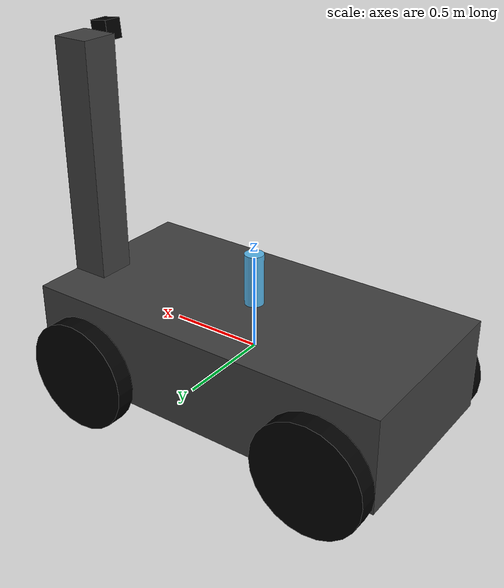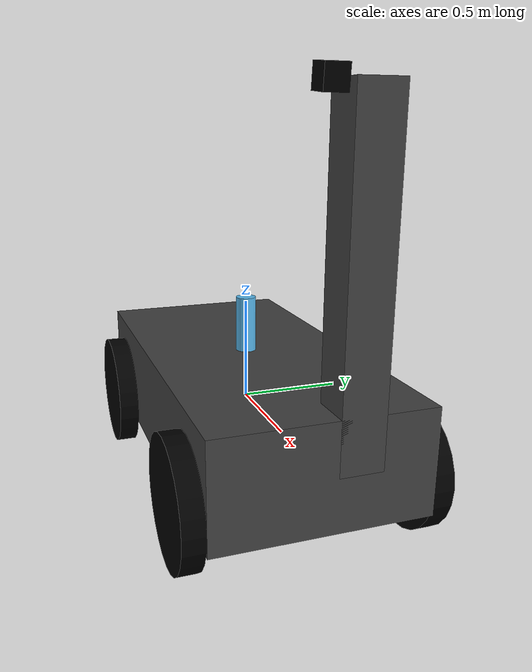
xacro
<?xml version="1.0"?>
<robot name="gmu_ackermann" xmlns:xacro="http://www.ros.org/wiki/xacro">

  <!-- Size (same as the original vehicle.xacro) -->
  <xacro:property name="body_length" value="2.0"/>
  <xacro:property name="body_width" value="1.0"/>
  <xacro:property name="body_height" value="0.5"/>
  <xacro:property name="body_density" value="100.0"/>
  <xacro:property name="wheel_radius" value="0.3"/>
  <xacro:property name="wheel_width" value="0.1"/>
  <xacro:property name="wheel_density" value="500.0"/>
  <xacro:property name="max_steering_angle" value="0.6108"/>
  <xacro:property name="max_steering_angular_velocity" value="1.570796"/>
  <xacro:property name="max_steering_effort" value="50.0"/>
  <xacro:property name="max_velocity" value="2.0"/>
  <xacro:property name="max_effort" value="50.0"/>
  <xacro:property name="camera_box_size" value="0.1"/>
  <xacro:property name="camera_stick_size" value="0.2"/>
  <xacro:property name="camera_height" value="1.5"/>
  <xacro:property name="camera_pitch" value="0.1"/>

  <!-- Derived -->
  <xacro:property name="body_mass" value="${body_density * body_length * body_height * body_width}"/>
  <xacro:property name="body_ix" value="${1.0/12.0 * body_mass * (body_height*body_height + body_width*body_width)}"/>
  <xacro:property name="body_iy" value="${1.0/12.0 * body_mass * (body_length*body_length + body_height*body_height)}"/>
  <xacro:property name="body_iz" value="${1.0/12.0 * body_mass * (body_length*body_length + body_width*body_width)}"/>
  <xacro:property name="wheel_separation" value="${body_width + wheel_width}"/>
  <xacro:property name="wheel_offset" value="${body_length/2 - wheel_radius}"/>
  <xacro:property name="wheel_mass" value="${wheel_density * pi * wheel_radius * wheel_radius * wheel_width}"/>
  <xacro:property name="wheel_ixy" value="${1.0/12.0 * wheel_mass * (3*wheel_radius*wheel_radius + wheel_width*wheel_width)}"/>
  <xacro:property name="wheel_iz" value="${0.5 * wheel_mass * wheel_radius * wheel_radius}"/>
  <xacro:property name="max_wheel_w" value="${max_velocity / wheel_radius}"/>

  <!-- Macros -->
  <xacro:macro name="wheel_link" params="name">
    <link name="${name}_wheel_link">
      <visual>
        <origin xyz="0 0 0" rpy="1.570795 0 0"/>
        <geometry><cylinder radius="${wheel_radius}" length="${wheel_width}"/></geometry>
        <material name="wheel_material"><color rgba="0 0 0 1"/></material>
      </visual>
      <collision>
        <origin xyz="0 0 0" rpy="1.570795 0 0"/>
        <geometry><cylinder radius="${wheel_radius}" length="${wheel_width}"/></geometry>
      </collision>
      <inertial>
        <mass value="${wheel_mass}"/>
        <origin xyz="0 0 0" rpy="1.570795 0 0"/>
        <inertia ixx="${wheel_ixy}" ixy="0" ixz="0" iyy="${wheel_ixy}" iyz="0" izz="${wheel_iz}"/>
      </inertial>
    </link>
  </xacro:macro>

  <xacro:macro name="steering_link" params="name">
    <link name="${name}_steering_link">
      <visual>
        <geometry><cylinder radius="0.02" length="0.02"/></geometry>
      </visual>
      <inertial>
        <mass value="0.5"/>
        <inertia ixx="0.001" ixy="0" ixz="0" iyy="0.001" iyz="0" izz="0.001"/>
      </inertial>
    </link>
  </xacro:macro>

  <xacro:macro name="effort_transmission" params="joint">
    <transmission name="${joint}_trans">
      <type>transmission_interface/SimpleTransmission</type>
      <joint name="${joint}">
        <hardwareInterface>hardware_interface/EffortJointInterface</hardwareInterface>
      </joint>
      <actuator name="${joint}_motor">
        <hardwareInterface>hardware_interface/EffortJointInterface</hardwareInterface>
        <mechanicalReduction>1</mechanicalReduction>
      </actuator>
    </transmission>
  </xacro:macro>

  <!-- Links -->
  <link name="body_link">
    <visual>
      <geometry><box size="${body_length} ${body_width} ${body_height}"/></geometry>
      <material name="body_material"><color rgba="0.25 0.25 0.25 1"/></material>
    </visual>
    <collision>
      <geometry><box size="${body_length} ${body_width} ${body_height}"/></geometry>
    </collision>
    <inertial>
      <mass value="${body_mass}"/>
      <inertia ixx="${body_ix}" ixy="0" ixz="0" iyy="${body_iy}" iyz="0" izz="${body_iz}"/>
    </inertial>
  </link>

  <xacro:wheel_link name="front_left"/>
  <xacro:wheel_link name="front_right"/>
  <xacro:wheel_link name="rear_left"/>
  <xacro:wheel_link name="rear_right"/>
  <xacro:steering_link name="front_left"/>
  <xacro:steering_link name="front_right"/>

  <link name="camera_stick_link">
    <visual>
      <geometry><box size="${camera_stick_size} ${camera_stick_size} ${camera_height}"/></geometry>
      <material name="camera_stick_material"><color rgba="0.25 0.25 0.25 1"/></material>
    </visual>
    <inertial>
      <mass value="1e-5"/>
      <inertia ixx="1e-6" ixy="0" ixz="0" iyy="1e-6" iyz="0" izz="1e-6"/>
    </inertial>
  </link>

  <link name="camera_link">
    <visual>
      <geometry><box size="${camera_box_size} ${camera_box_size} ${camera_box_size}"/></geometry>
      <material name="camera_material"><color rgba="0 0 0 1"/></material>
    </visual>
    <inertial>
      <mass value="1e-5"/>
      <inertia ixx="1e-6" ixy="0" ixz="0" iyy="1e-6" iyz="0" izz="1e-6"/>
    </inertial>
  </link>

  <link name="laser_link">
    <visual>
      <geometry><cylinder radius= "0.05" length= "0.5"/></geometry>
    </visual>
    <inertial>
      <mass value="1e-5"/>
      <inertia ixx="1e-6" ixy="0" ixz="0" iyy="1e-6" iyz="0" izz="1e-6"/>
    </inertial>
  </link>

  <!-- Joints -->
  <joint name="front_left_steering_joint" type="revolute">
    <origin xyz="${wheel_offset} ${wheel_separation/2} -${wheel_radius/2}" rpy="0 0 0"/>
    <parent link="body_link"/>
    <child link="front_left_steering_link"/>
    <axis xyz="0 0 1"/>
    <limit effort="${max_steering_effort}" lower="${-max_steering_angle}" upper="${max_steering_angle}" velocity="${max_steering_angular_velocity}"/>
    <dynamics damping="0.1" friction="0.1"/>
  </joint>

  <joint name="front_left_wheel_joint" type="continuous">
    <parent link="front_left_steering_link"/>
    <child link="front_left_wheel_link"/>
    <axis xyz="0 1 0"/>
    <dynamics damping="0.1" friction="0.1"/>
  </joint>

  <joint name="front_right_steering_joint" type="revolute">
    <origin xyz="${wheel_offset} ${-wheel_separation/2} -${wheel_radius/2}" rpy="0 0 0"/>
    <parent link="body_link"/>
    <child link="front_right_steering_link"/>
    <axis xyz="0 0 1"/>
    <limit effort="${max_steering_effort}" lower="${-max_steering_angle}" upper="${max_steering_angle}" velocity="${max_steering_angular_velocity}"/>
    <dynamics damping="0.1" friction="0.1"/>
  </joint>

  <joint name="front_right_wheel_joint" type="continuous">
    <parent link="front_right_steering_link"/>
    <child link="front_right_wheel_link"/>
    <axis xyz="0 1 0"/>
    <dynamics damping="0.1" friction="0.1"/>
  </joint>

  <joint name="rear_left_wheel_joint" type="continuous">
    <origin xyz="-${wheel_offset} ${wheel_separation/2} -${wheel_radius/2}" rpy="0 0 0"/>
    <parent link="body_link"/>
    <child link="rear_left_wheel_link"/>
    <axis xyz="0 1 0"/>
    <limit effort="${max_effort}" velocity="${max_wheel_w}"/>
    <dynamics damping="0.1" friction="0.1"/>
  </joint>

  <joint name="rear_right_wheel_joint" type="continuous">
    <origin xyz="-${wheel_offset} ${-wheel_separation/2} -${wheel_radius/2}" rpy="0 0 0"/>
    <parent link="body_link"/>
    <child link="rear_right_wheel_link"/>
    <axis xyz="0 1 0"/>
    <limit effort="${max_effort}" velocity="${max_wheel_w}"/>
    <dynamics damping="0.1" friction="0.1"/>
  </joint>

  <joint name="camera_stick_joint" type="fixed">
    <origin xyz="${body_length/2 - camera_stick_size/2} ${camera_box_size/2 + camera_stick_size/2} ${camera_height/2}" rpy="0 0 0"/>
    <parent link="body_link"/>
    <child link="camera_stick_link"/>
  </joint>

  <joint name="camera_joint" type="fixed">
    <origin xyz="0 ${-camera_box_size/2 - camera_stick_size/2} ${camera_height/2}" rpy="0 ${camera_pitch} 0"/>
    <parent link="camera_stick_link"/>
    <child link="camera_link"/>
  </joint>

  <!-- Laser joint -->
  <joint name="laser_joint" type="fixed">
    <origin xyz="0 0 0.275" rpy="0 0 0"/>
    <parent link="body_link"/>
    <child link="laser_link"/>
  </joint>

  <!-- Controlled joints -->
  <xacro:effort_transmission joint="front_left_steering_joint"/>
  <xacro:effort_transmission joint="front_right_steering_joint"/>
  <xacro:effort_transmission joint="rear_left_wheel_joint"/>
  <xacro:effort_transmission joint="rear_right_wheel_joint"/>

  <!-- Gazebo Classic settings -->
  <gazebo reference="body_link">
    <mu1>0.0001</mu1>
    <mu2>0.0001</mu2>
    <material>Gazebo/Grey</material>
  </gazebo>
  <gazebo reference="front_left_wheel_link"><mu1>100</mu1><mu2>100</mu2><material>Gazebo/Black</material></gazebo>
  <gazebo reference="front_right_wheel_link"><mu1>100</mu1><mu2>100</mu2><material>Gazebo/Black</material></gazebo>
  <gazebo reference="rear_left_wheel_link"><mu1>100</mu1><mu2>100</mu2><material>Gazebo/Black</material></gazebo>
  <gazebo reference="rear_right_wheel_link"><mu1>100</mu1><mu2>100</mu2><material>Gazebo/Black</material></gazebo>

  <gazebo>
    <plugin name="gazebo_ros_control" filename="libgazebo_ros_control.so">
      <robotNamespace>/vehicle</robotNamespace>
    </plugin>
    <plugin name="odom_plugin" filename="libgazebo_ros_p3d.so">
      <bodyName>body_link</bodyName>
      <topicName>odom</topicName>
      <frameName>world</frameName>
      <updateRate>50.0</updateRate>
    </plugin>
  </gazebo>

  <gazebo reference="camera_link">
    <sensor type="camera" name="front_camera">
      <update_rate>30</update_rate>
      <camera name="head">
        <horizontal_fov>1.396263</horizontal_fov>
        <image><width>640</width><height>480</height><format>R8G8B8</format></image>
        <clip><near>0.02</near><far>300</far></clip>
      </camera>
      <plugin name="camera_controller" filename="libgazebo_ros_camera.so">
        <alwaysOn>true</alwaysOn>
        <updateRate>0.0</updateRate>
        <cameraName>vehicle_front_camera</cameraName>
        <imageTopicName>image_raw</imageTopicName>
        <cameraInfoTopicName>camera_info</cameraInfoTopicName>
        <frameName>camera_link</frameName>
      </plugin>
    </sensor>
  </gazebo>

  <gazebo reference="body_link">
    <sensor type="imu" name="imu_sensor">
      <always_on>true</always_on>
      <update_rate>50</update_rate>
      <plugin name="imu_plugin" filename="libgazebo_ros_imu_sensor.so">
        <topicName>imu</topicName>
        <frameName>body_link</frameName>
        <updateRateHZ>50.0</updateRateHZ>
      </plugin>
    </sensor>
  </gazebo>

  <gazebo reference="laser_link">
    <sensor type="ray" name="laser_sensor">
      <pose>0 0 0 0 0 0</pose>
      <visualize>true</visualize>
      <update_rate>10</update_rate>
      <ray>
        <scan>
          <horizontal>
            <samples>720</samples>
            <resolution>1</resolution>
            <min_angle>-1.570796</min_angle>
            <max_angle>1.570796</max_angle>
          </horizontal>
        </scan>
        <range>
          <min>0.12</min>
          <max>3.5</max>
          <resolution>0.01</resolution>
        </range>
        <noise>
          <type>gaussian</type>
          <mean>0.0</mean>
          <stddev>0.01</stddev>
        </noise>
      </ray>
      <plugin name="gazebo_ros_laser_controller" filename="libgazebo_ros_laser.so">
        <topicName>scan</topicName>
        <frameName>laser_link</frameName>
      </plugin>
    </sensor>
  </gazebo>

</robot>
